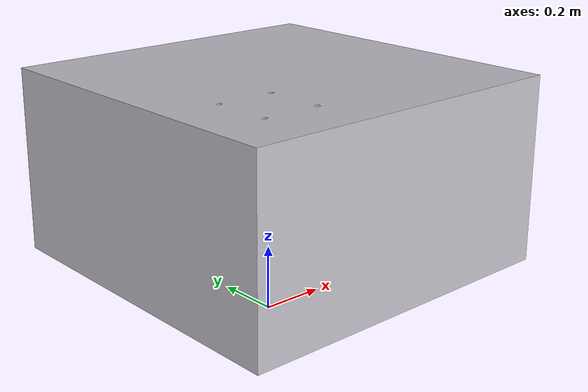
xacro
<?xml version="1.0" ?>
<robot name="env" xmlns:xacro="http://www.ros.org/wiki/xacro" >

  <link name="table_link">
    <visual>
      <origin rpy="0 0 0" xyz="0 0 0"/>
      <geometry>
        <mesh filename="package://hc10_ros/meshes/env/table.stl" scale="0.01 0.01 0.01"/>
      </geometry>
      <material name="silver"/>
    </visual>
    <collision>
      <origin rpy="0 0 0" xyz="0 0 0"/>
      <geometry>
        <mesh filename="package://hc10_ros/meshes/env/table.stl" scale="0.01 0.01 0.01"/>
      </geometry>
    </collision>
  </link>

</robot>
